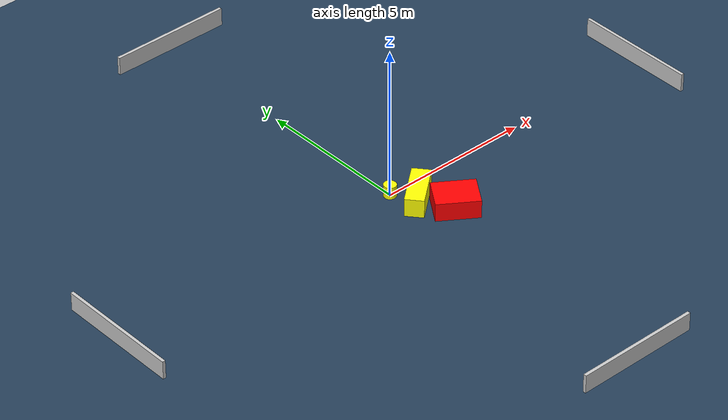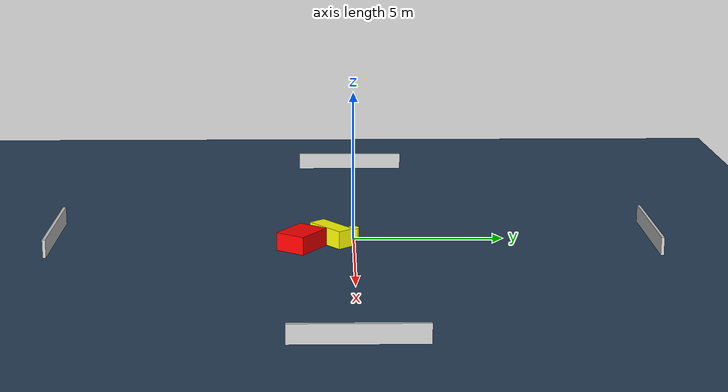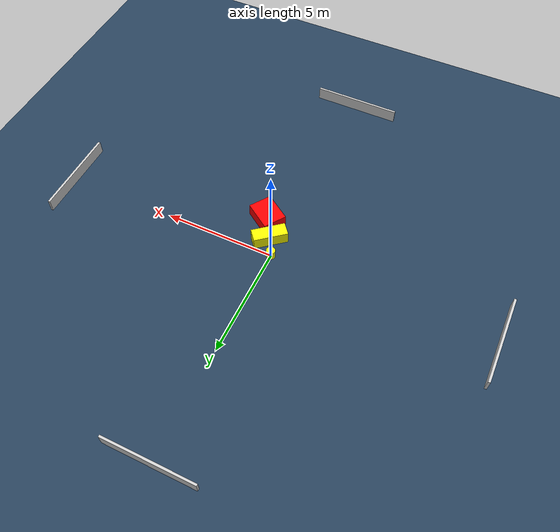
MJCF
<?xml version="1.0" ?>
<mujoco model="generated_environment">
  <option timestep="0.01" integrator="RK4" cone="elliptic"/>
  <default>
    <geom density="1"/>
  </default>
  <asset>
    <texture builtin="gradient" height="3072" name="skybox" rgb1="0.3 0.5 0.7" rgb2="0 0 0" type="skybox" width="512"/>
    <texture builtin="checker" height="300" name="groundplane" rgb1="0.2 0.3 0.4" rgb2="0.1 0.2 0.3" type="2d" width="300"/>
    <material name="groundplane" reflectance="0.2" texrepeat="5 5" texture="groundplane"/>
  </asset>
  <worldbody>
    <light dir="0 0 -1" directional="true" pos="0 0 1.5"/>
    <geom condim="3" friction="0.5 0.005 0.001" material="groundplane" name="floor" pos="0 0 0" size="0 0 0.05" type="plane"/>
    <body name="walls">
      <geom name="wall_1" condim="4" pos="-10.0 0.0 0.3" rgba="0.800000011920929 0.800000011920929 0.800000011920929 1.0" size="0.05 2.0 0.3" type="box"/>
      <geom name="wall_2" condim="4" pos="10.0 0.0 0.3" rgba="0.800000011920929 0.800000011920929 0.800000011920929 1.0" size="0.05 2.0 0.3" type="box"/>
      <geom name="wall_3" condim="4" pos="0.0 -10.0 0.3" rgba="0.800000011920929 0.800000011920929 0.800000011920929 1.0" size="2.0 0.05 0.3" type="box"/>
      <geom name="wall_4" condim="4" pos="0.0 10.0 0.3" rgba="0.800000011920929 0.800000011920929 0.800000011920929 1.0" size="2.0 0.05 0.3" type="box"/>
    </body>
    <body name="robot">
      <joint name="joint_x" type="slide" pos="0 0 0" axis="1 0 0"/>
      <joint name="joint_y" type="slide" pos="0 0 0" axis="0 1 0"/>
      <geom name="robot" type="cylinder" pos="0.0 0.0 0.2" size="0.2 0.2 0.0" mass="5.0" friction="1.0 0.005 0.0001" condim="4" rgba="1.0 1.0 0.0 1.0"/>
    </body>
    <body name="obstacle_1_movable">
      <geom name="obstacle_1_movable" condim="4" pos="0.41475475331863015 -0.7356695875858266 0.3" euler="0 0 219.47042387757833" friction="0.0 0.005 0.001" rgba="1.0 1.0 0.0 1.0" size="0.7606991600398296 0.2952846857645537 0.3" type="box" mass="0.1"/>
      <joint type="free"/>
    </body>
    <body name="obstacle_2_static">
      <geom name="obstacle_2_static" condim="4" pos="0.9842172319222028 -1.7187567280805582 0.3" euler="0 0 325.7015614595696" friction="0.0 0.005 0.001" rgba="1.0 0.0 0.0 1.0" size="0.673592820879061 0.5301977862374456 0.3" type="box"/>
    </body>
  </worldbody>
  <actuator>
    <motor name="actuator_x" joint="joint_x" gear="1" ctrlrange="-1 1"/>
    <motor name="actuator_y" joint="joint_y" gear="1" ctrlrange="-1 1"/>
  </actuator>
</mujoco>
